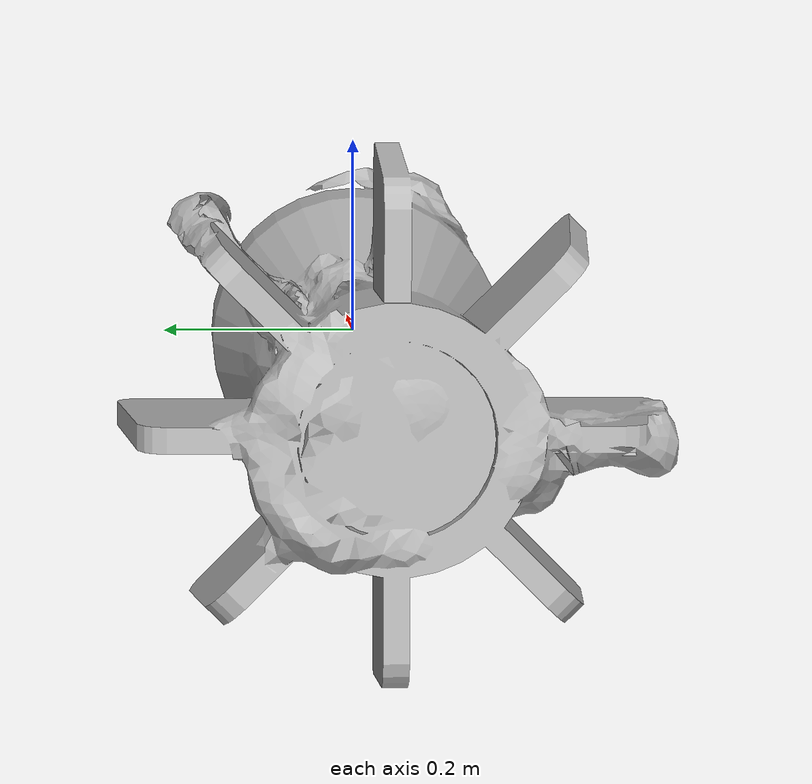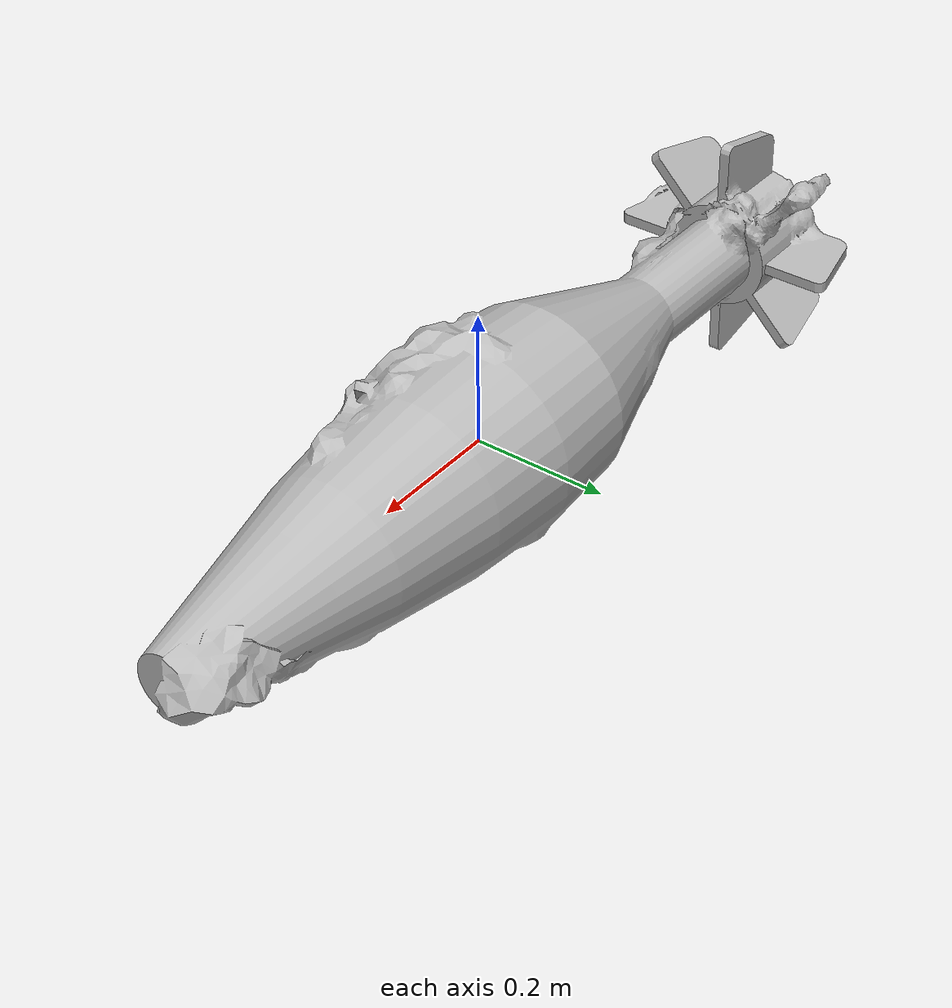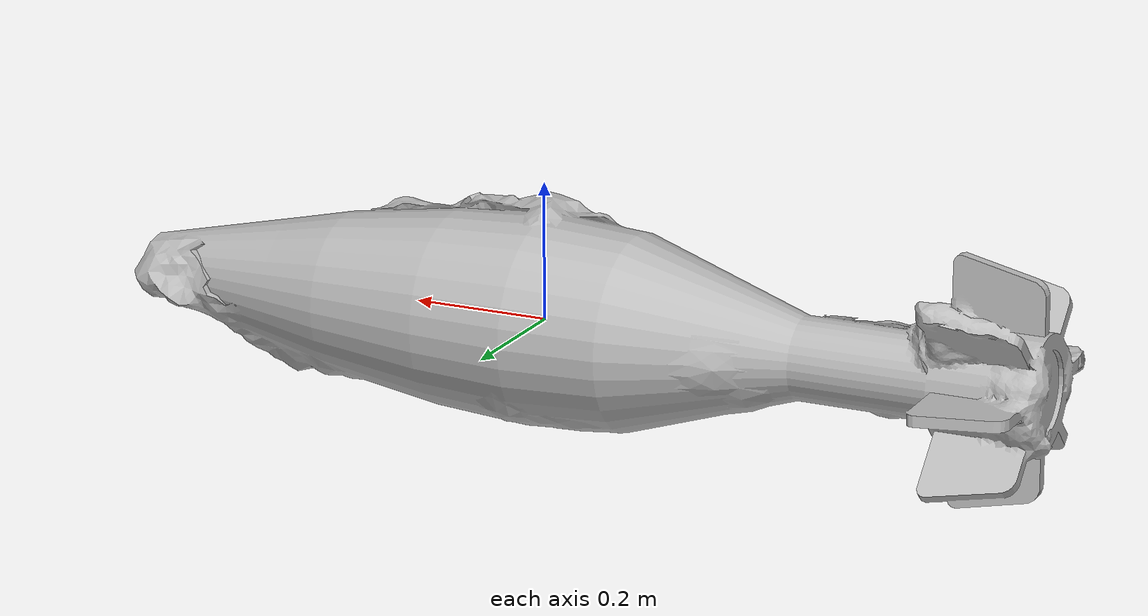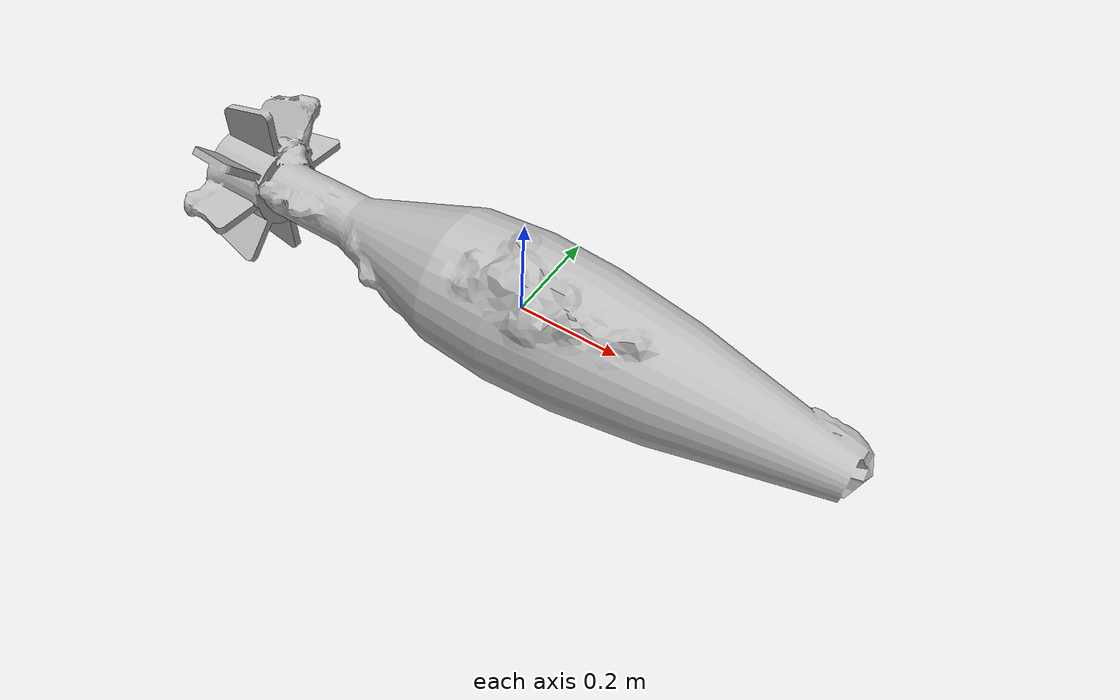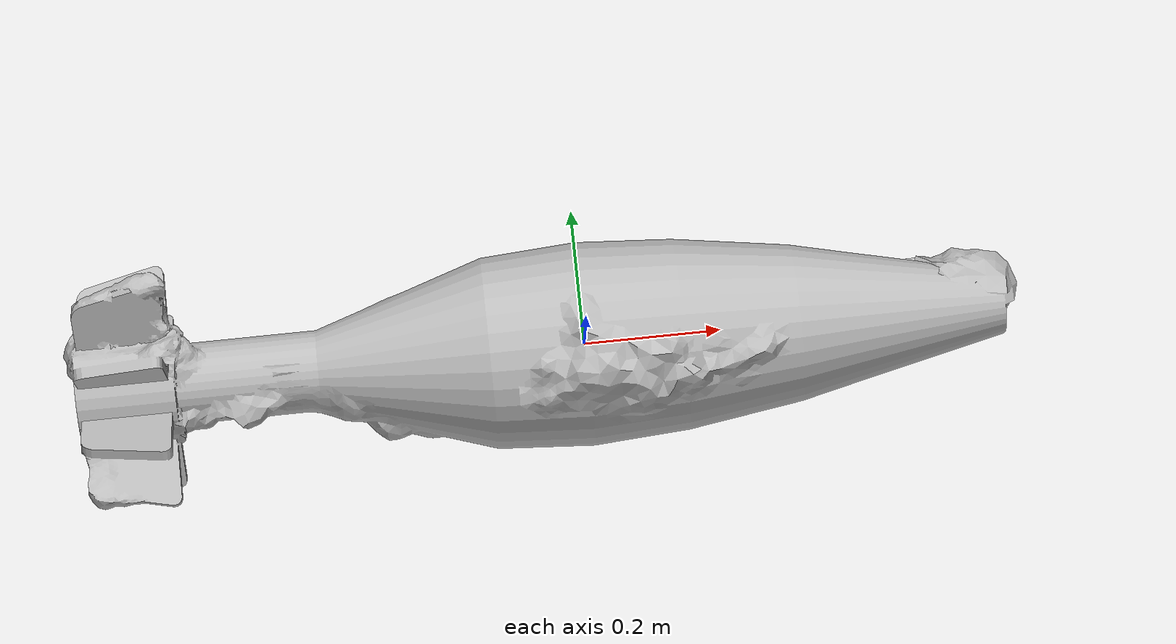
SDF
<?xml version="1.0"?>
<sdf version="1.6">
  <model name="uxo_a">
    <static>false</static>
    <link name="base_link">
      <inertial>
        <mass>25</mass>
        <inertia>
          <ixx>0.12</ixx>
          <ixy>0.0</ixy>
          <ixz>0.0</ixz>
          <iyy>2.6</iyy>
          <iyz>0.0</iyz>
          <izz>2.6</izz>
        </inertia>
      </inertial>
      <visual name="visual">
        <geometry>
           <mesh>
            <uri>file://uxo_a/meshes/uxo_a.dae</uri>
          </mesh>
        </geometry>
      </visual>
      <collision name="collision">
        <pose>0 0 0 0 0 0</pose>
        <geometry>
          <mesh>
            <uri>file://uxo_a/meshes/uxo_a_collision.dae</uri>
          </mesh>
        </geometry>
      </collision>
    </link>
  </model>
</sdf>
